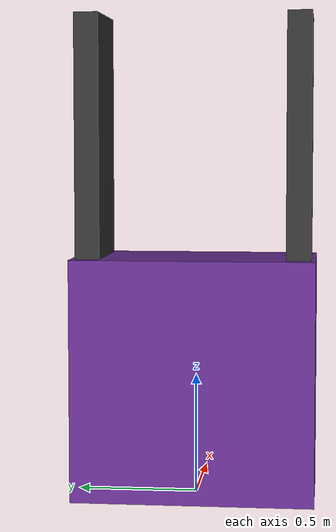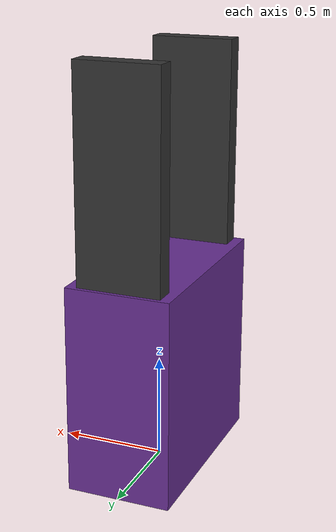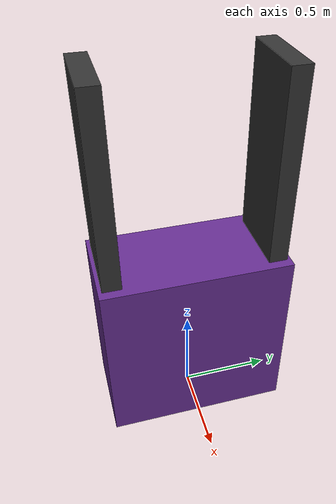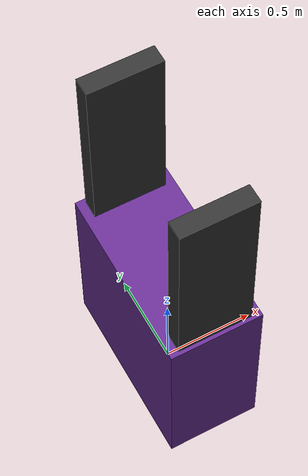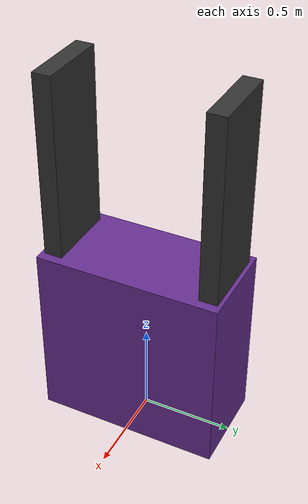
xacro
<?xml version="1.0"?>
<robot name="gripper" xmlns:xacro="http://www.ros.org/wiki/xacro">

<!-- ****************************************************** Gripper Robot ************************************************************  -->
<!-- Muthanna Alwahash                                                                                                                  -->
<!-- March 2022                                                                                                                         -->

<!-- ****************************************************** Parameters ***************************************************************  -->

    <xacro:property name="pkg_path"     value="$(find bots)"                />
    <xacro:property name="mesh_path"    value="${pkg_path}/meshes/gripper/" />
    <xacro:property name="config_path"  value="${pkg_path}/config/"         />

    <xacro:property name="name_space"   value="cart" />
    <xacro:property name="prefix"       value=""      />

<!-- ****************************************************** Includes *****************************************************************  -->

    <xacro:include filename="${pkg_path}/xacro/common_rviz_materials.xacro" />  <!--  RVIZ Colors  -->
    <xacro:include filename="${pkg_path}/xacro/urdf_gripper.xacro" />           <!--  Robot URDF   -->
    <xacro:include filename="${pkg_path}/gazebo/gz_gripper.xacro" />            <!--  Gazebo Sim   -->
    <xacro:include filename="${pkg_path}/r2c/r2c_gripper.xacro" />              <!--  ROS2_Control -->

<!-- ****************************************************** END **********************************************************************  -->

</robot>

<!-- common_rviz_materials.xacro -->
<!-- ****************************************************** RVIZ Colors **************************************************************  -->
<!-- Muthanna Alwahash                                                                                                                  -->
<!-- March 2022                                                                                                                         -->

<robot>

  <material name="red">
    <color rgba="1.0 0.0 0.0 1.0"/>
  </material>

  <material name="green">
    <color rgba="0.0 1.0 0.0 1.0"/>
  </material>

  <material name="blue">
    <color rgba="0.0 0.0 1.0 1.0"/>
  </material>

  <material name="black">
    <color rgba="0.3 0.3 0.3 1.0"/>
  </material>

  <material name="white">
    <color rgba="1.0 1.0 1.0 1.0"/>
  </material>

  <material name="grey">
    <color rgba="0.2 0.2 0.2 1.0"/>
  </material>

  <material name="orange">
    <color rgba="${255/255} ${108/255} ${10/255} 1.0"/>
  </material>

  <material name="brown">
    <color rgba="${222/255} ${207/255} ${195/255} 1.0"/>
  </material>

  <material name="yellow">
    <color rgba="1.0 1.0 0.0 1.0"/>
  </material>

</robot>

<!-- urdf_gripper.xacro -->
<robot name="gripper"  xmlns:xacro="http://ros.org/wiki/xacro">

<!-- ****************************************************** World Link *************************************************************** -->

  <link name="world"/>

<!-- ****************************************************** Base Link **************************************************************** -->

  <link name="base">
    <visual>
      <geometry>
        <box size="0.5 1 1"/>
      </geometry>
      <origin xyz="0 0 0.5"/>
      <material name="violet">
        <color rgba="0.4 0.18 0.57 1.0" />
      </material>
    </visual>
    <inertial>
      <mass value="50"/>
      <inertia ixx="1.0" ixy="0.0" ixz="0.0" iyy="1.0" iyz="0.0" izz="1.0"/>
    </inertial>
  </link>

  <gazebo reference="base">
    <material>Gazebo/Orange</material>
  </gazebo>

<!-- ****************************************************** finger_right Link ******************************************************** -->

  <link name="finger_right">
    <visual>
      <geometry>
        <box size="0.4 0.1 1"/>
      </geometry>
      <origin xyz="0 0.05 0.5"/>
      <material name="grey">
        <color rgba="0.2 0.2 0.2 1"/>
      </material>
    </visual>
    <inertial>
      <mass value="5"/>
      <inertia ixx="1.0" ixy="0.0" ixz="0.0" iyy="1.0" iyz="0.0" izz="1.0"/>
    </inertial>
  </link>

<!-- ****************************************************** finger_left Link ********************************************************* -->

  <link name="finger_left">
    <visual>
      <geometry>
        <box size="0.4 0.1 1"/>
      </geometry>
      <origin xyz="0 0.05 0.5"/>
      <material name="grey">
        <color rgba="0.2 0.2 0.2 1"/>
      </material>
    </visual>
    <inertial>
      <mass value="5"/>
      <inertia ixx="1.0" ixy="0.0" ixz="0.0" iyy="1.0" iyz="0.0" izz="1.0"/>
    </inertial>
  </link>

<!-- ****************************************************** world to base Joint ****************************************************** -->

  <joint name="world_to_base" type="fixed">
    <origin rpy="0 0 0" xyz="0 0 0"/>
    <parent link="world"/>
    <child link="base"/>
  </joint>

<!-- ****************************************************** right_finger Joint ******************************************************* -->

  <joint name="right_finger_joint" type="prismatic">
    <axis xyz="0 1 0"/>
    <origin xyz="0.0 -0.48 1" rpy="0.0 0.0 0.0"/>
    <parent link="base"/>
    <child link="finger_right"/>
    <limit effort="1000.0" lower="0" upper="0.38" velocity="10"/>
  </joint>

<!-- ****************************************************** left_finger Joint ******************************************************** -->

  <joint name="left_finger_joint" type="prismatic">
    <mimic joint="right_finger_joint"/>
    <axis xyz="0 1 0"/>
    <origin xyz="0.0 0.48 1" rpy="0.0 0.0 3.1415926535"/>
    <parent link="base"/>
    <child link="finger_left"/>
    <limit effort="1000.0" lower="0" upper="0.38" velocity="10"/>
  </joint>

<!-- ****************************************************** End ********************************************************************** -->

</robot>
